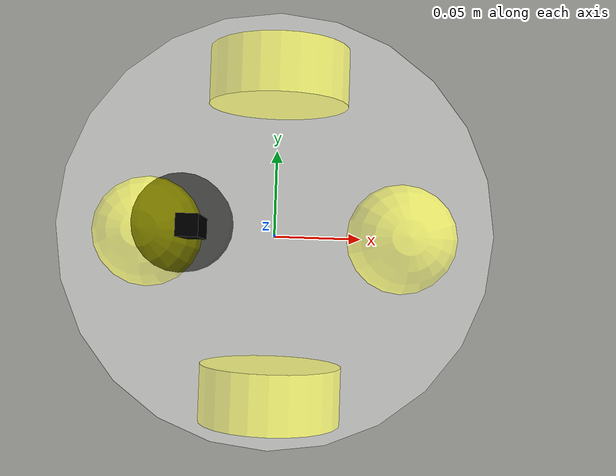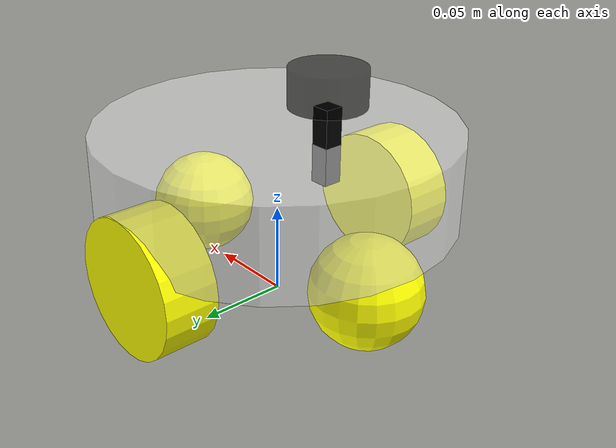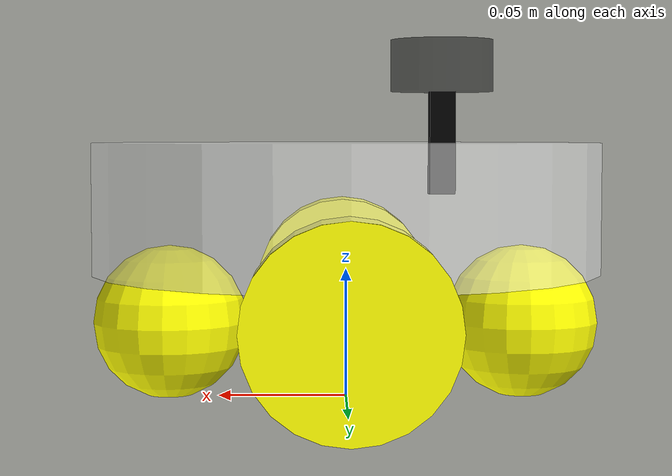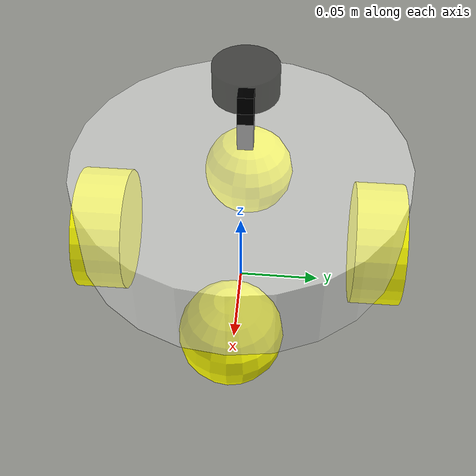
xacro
<?xml version="1.0"?>
<robot xmlns:xacro="http://www.ros.org/wiki/xacro" name="robot">

<xacro:include filename="$(find robot_description)/urdf/robot/base.urdf.xacro"/>
<xacro:include filename="$(find robot_description)/urdf/robot/sensor/laser.urdf.xacro"/>
<xacro:include filename="$(find robot_description)/urdf/robot/actuator/wheel.urdf.xacro"/>
<xacro:include filename="$(find robot_description)/urdf/robot/actuator/caster.urdf.xacro"/>

<!-- 车身 -->
<xacro:base_xacro radius="0.099" length="0.05"/>

<!-- 雷达 -->
<xacro:laser_xacro length="0.02" radius="0.02" xyz="-0.0375 0.0 0.025" />

<!-- 车轮 -->
<xacro:caster_xacro caster_name="frt_caster" radius="0.03" xyz="-0.069 0.0 -0.045" />
<xacro:caster_xacro caster_name="bak_caster" radius="0.03" xyz="0.069 0.0 -0.045" />
<xacro:wheel_xacro wheel_name="left_wheel" length="0.03" radius="0.0375" xyz="0.00 0.084 -0.0375" />
<xacro:wheel_xacro wheel_name="right_wheel" length="0.03" radius="0.0375" xyz="0.00 -0.084 -0.0375" />
</robot>

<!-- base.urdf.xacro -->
<robot xmlns:xacro="http://www.ros.org/wiki/xacro">

    <!-- location -->
    <link name="base_footprint" />

    <xacro:macro name="base_xacro" params="radius length">
        <!-- Body -->
        <link name="base_link">
            <!-- Description of apperance -->
            <visual>
                <origin xyz="0.0 0.0 0.0" rpy="0.0 0.0 0.0"/>
                <geometry>
                    <cylinder radius="${radius}" length="${length}"/>
                </geometry>
                <material name="white">
                    <color rgba="1.0 1.0 1.0 0.5"/>
                </material>
            </visual>
            <collision>
                <origin xyz="0.0 0.0 0.0" rpy="0.0 0.0 0.0"/>
                <geometry>
                    <cylinder radius="${radius}" length="${length / 2.0}"/>
                </geometry>
                <material name="white">
                    <color rgba="1.0 1.0 1.0 0.5"/>
                </material>
            </collision>

        </link>

        <joint name="base_joint" type="fixed">
            <origin xyz="0.0 0.0 0.0745" rpy="0.0 0.0 0.0"/>
            <parent link="base_footprint"/>
            <child link="base_link"/>
        </joint>

    </xacro:macro>
</robot>

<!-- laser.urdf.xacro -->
<robot xmlns:xacro="http://www.ros.org/wiki/xacro">
    <xacro:macro name="laser_xacro" params="xyz radius length">
        <link name="laser_stand_link">
            <visual>
                <origin xyz="0.0 0.0 0.0" rpy="0.0 0.0 0.0"/>
                <geometry>
                    <box size="0.01 0.01 0.04"/>
                </geometry>
                <material name="black">
                    <color rgba="0.0 0.0 0.0 1.0"/>
                </material>
            </visual>
            <collision>
                <origin xyz="0.0 0.0 0.0" rpy="0.0 0.0 0.0"/>
                <geometry>
                    <box size="0.01 0.01 0.04"/>
                </geometry>
                <material name="black">
                    <color rgba="0.0 0.0 0.0 1.0"/>
                </material>
            </collision>
        </link>
        <link name="laser_link">
            <visual>
                <origin xyz="0.0 0.0 0.0" rpy="0.0 0.0 0.0"/>
                <geometry>
                    <cylinder radius="${radius}" length="${length}"/>
                </geometry>
                <material name="black">
                    <color rgba="0.0 0.0 0.0 0.5"/>
                </material>
            </visual>
            <collision>
                <origin xyz="0.0 0.0 0.0" rpy="0.0 0.0 0.0"/>
                <geometry>
                    <cylinder radius="${radius}" length="${length}"/>
                </geometry>
                <material name="black">
                    <color rgba="0.0 0.0 0.0 0.5"/>
                </material>
            </collision>
        </link>

        <joint name="laser_stand_joint" type="fixed">
            <origin xyz="0.0 0.0 0.03" rpy="0.0 0.0 3.1416"/>
            <parent link="laser_stand_link"/>
            <child link="laser_link"/>
        </joint>

        <joint name="laser_joint" type="fixed">
            <origin xyz="${xyz}" rpy="0.0 0.0 0.0"/>
            <parent link="base_link"/>
            <child link="laser_stand_link"/>
        </joint>

    </xacro:macro>
</robot>

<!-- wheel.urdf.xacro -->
<robot xmlns:xacro="http://www.ros.org/wiki/xacro">
    <xacro:macro name="wheel_xacro" params="wheel_name xyz radius length">
        <link name="${wheel_name}_link">
            <visual>
                <origin xyz="0.0 0.0 0.0" rpy="1.57079 0.0 0.0"/>
                <geometry>
                    <cylinder radius="${radius}" length="${length}"/>
                </geometry>
                <material name="yellow">
                    <color rgba="1.0 1.0 0.0 1.0"/>
                </material>
            </visual>
            <collision>
                <origin xyz="0.0 0.0 0.0" rpy="1.57079 0.0 0.0"/>
                <geometry>
                    <cylinder radius="${radius}" length="${length}"/>
                </geometry>
                <material name="yellow">
                    <color rgba="1.0 1.0 0.0 1.0"/>
                </material>
            </collision>
        </link>

        <joint name="${wheel_name}_joint" type="continuous">
            <origin xyz="${xyz}" rpy="0.0 0.0 0.0"/>
            <parent link="base_link"/>
            <child link="${wheel_name}_link"/>
            <axis xyz="0.0 1.0 0.0"/>
        </joint>

    </xacro:macro>
</robot>

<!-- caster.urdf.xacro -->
<robot xmlns:xacro="http://www.ros.org/wiki/xacro">
    <xacro:macro name="caster_xacro" params="caster_name xyz radius">
        <link name="${caster_name}_link">
            <visual>
                <origin xyz="0.0 0.0 0.0" rpy="0.0 0.0 0.0"/>
                <geometry>
                    <sphere radius="${radius}"/>
                </geometry>
                <material name="yellow">
                    <color rgba="1.0 1.0 0.0 1.0"/>
                </material>
            </visual>
            <collision>
                <origin xyz="0.0 0.0 0.0" rpy="0.0 0.0 0.0"/>
                <geometry>
                    <sphere radius="${radius}"/>
                </geometry>
                <material name="yellow">
                    <color rgba="1.0 1.0 0.0 1.0"/>
                </material>
            </collision>
        </link>

        <joint name="${caster_name}_joint" type="fixed">
            <origin xyz="${xyz}" rpy="0.0 0.0 0.0"/>
            <parent link="base_link"/>
            <child link="${caster_name}_link"/>
        </joint>

    </xacro:macro>
</robot>
